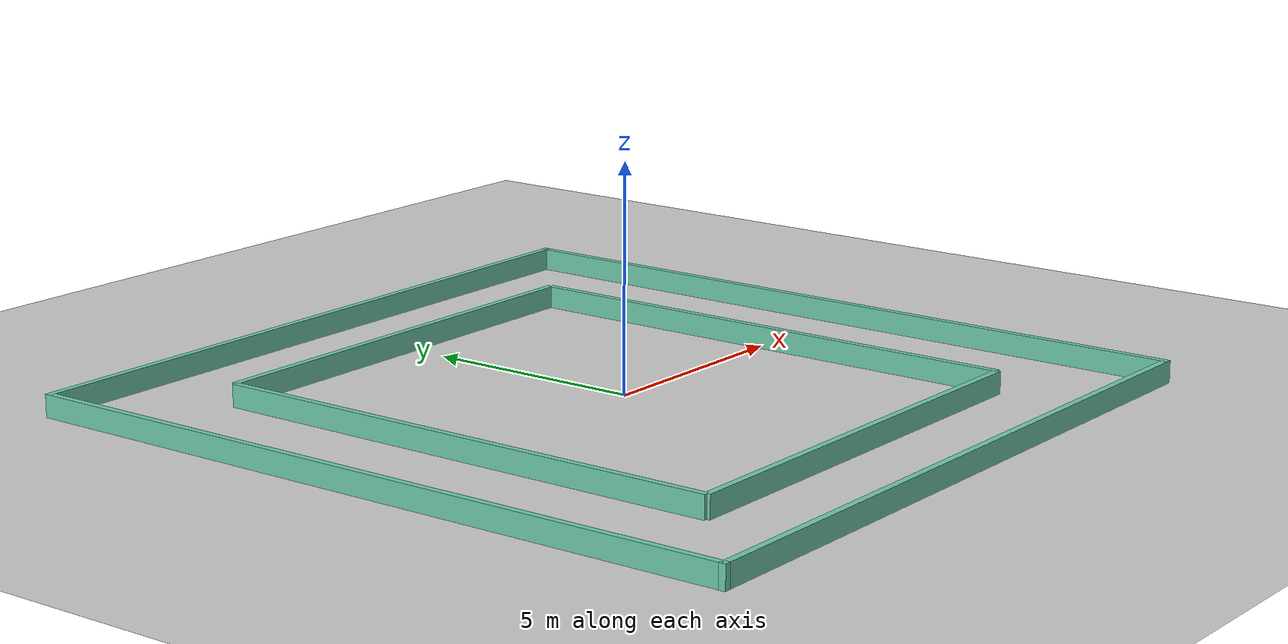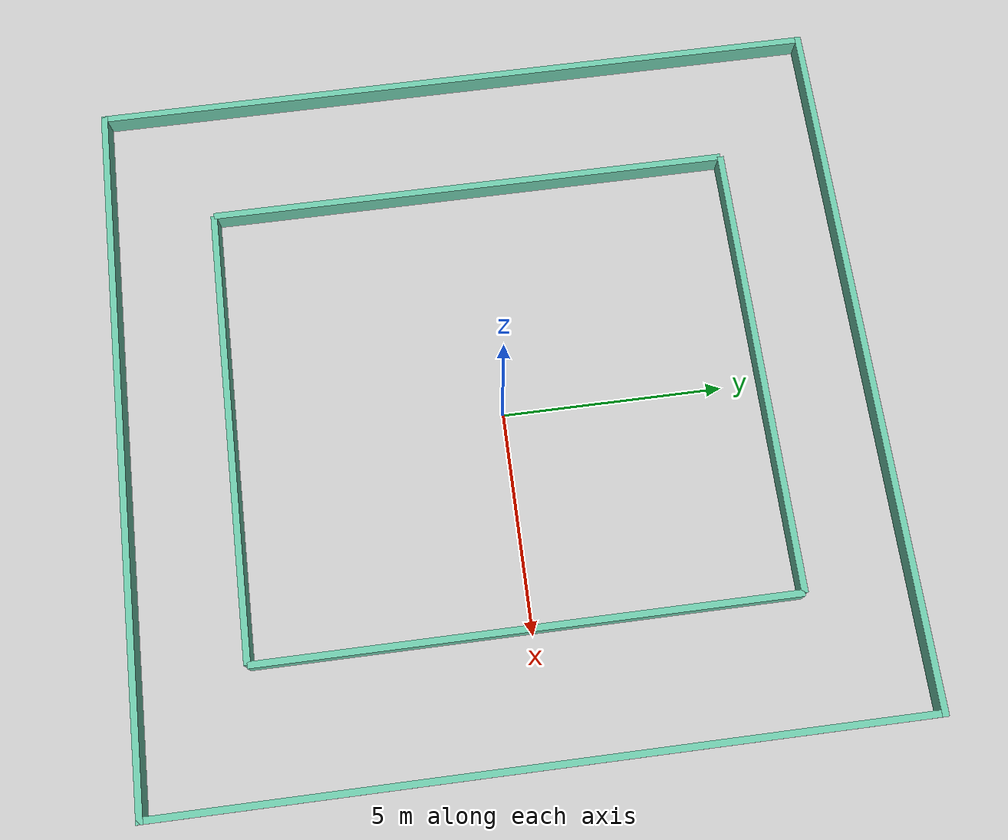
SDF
<sdf version="1.7">
 <world name="default">
  <light name="sun" type="directional">
   <pose>0 0 10 0 -0 0</pose>
   <diffuse>0.8 0.8 0.8 1</diffuse>
   <specular>0.2 0.2 0.2 1</specular>
   <attenuation>
    <range>1000</range>
    <constant>0.9</constant>
    <linear>0.01</linear>
    <quadratic>0.001</quadratic>
   </attenuation>
   <direction>-0.5 0.1 -0.9</direction>
   <spot><inner_angle>0</inner_angle><outer_angle>0</outer_angle><falloff>0</falloff></spot>
  </light>
  <model name="ground_plane">
   <static>1</static>
   <link name="link">
    <collision name="collision">
     <geometry><plane><normal>0 0 1</normal><size>100 100</size></plane></geometry>
     <surface><friction><ode><mu>100</mu><mu2>50</mu2></ode></friction></surface>
    </collision>
    <visual name="visual">
     <cast_shadows>0</cast_shadows>
     <geometry><plane><normal>0 0 1</normal><size>100 100</size></plane></geometry>
     <material>
      <script><uri>file://media/materials/scripts/gazebo.material</uri><name>Gazebo/Grey</name></script>
     </material>
    </visual>
   </link>
  </model>
  <model name="walls">
   <pose>-0.314414 -0.093904 -1 0 -0 0</pose>
   <link name="inner_wall_1">
    <collision name="inner_wall_1_Collision">
     <geometry><box><size>10.4 0.15 0.5</size></box></geometry>
     <pose>0 0 1.25 0 -0 0</pose>
    </collision>
    <visual name="inner_wall_1_Visual">
     <pose>0 0 1.25 0 -0 0</pose>
     <geometry><box><size>10.4 0.15 0.5</size></box></geometry>
     <material>
      <script><uri>file://media/materials/scripts/gazebo.material</uri><name>Gazebo/Grey</name></script>
      <ambient>0.435294 0.796078 0.67451 1</ambient>
     </material>
     <meta><layer>0</layer></meta>
    </visual>
    <pose>0.0 6.0 0 0 -0 0</pose>
   </link>
   <link name="inner_wall_2">
    <collision name="inner_wall_2_Collision">
     <geometry><box><size>12.0 0.15 0.5</size></box></geometry>
     <pose>0 0 1.25 0 -0 0</pose>
    </collision>
    <visual name="inner_wall_2_Visual">
     <pose>0 0 1.25 0 -0 0</pose>
     <geometry><box><size>12.0 0.15 0.5</size></box></geometry>
     <material>
      <script><uri>file://media/materials/scripts/gazebo.material</uri><name>Gazebo/Grey</name></script>
      <ambient>0.435294 0.796078 0.67451 1</ambient>
     </material>
     <meta><layer>0</layer></meta>
    </visual>
    <pose>5.2 0.0 0 0 -0 1.5708</pose>
   </link>
   <link name="inner_wall_3">
    <collision name="inner_wall_3_Collision">
     <geometry><box><size>10.4 0.15 0.5</size></box></geometry>
     <pose>0 0 1.25 0 -0 0</pose>
    </collision>
    <visual name="inner_wall_3_Visual">
     <pose>0 0 1.25 0 -0 0</pose>
     <geometry><box><size>10.4 0.15 0.5</size></box></geometry>
     <material>
      <script><uri>file://media/materials/scripts/gazebo.material</uri><name>Gazebo/Grey</name></script>
      <ambient>0.435294 0.796078 0.67451 1</ambient>
     </material>
     <meta><layer>0</layer></meta>
    </visual>
    <pose>0.0 -6.0 0 0 -0 0</pose>
   </link>
   <link name="inner_wall_4">
    <collision name="inner_wall_4_Collision">
     <geometry><box><size>12.0 0.15 0.5</size></box></geometry>
     <pose>0 0 1.25 0 -0 0</pose>
    </collision>
    <visual name="inner_wall_4_Visual">
     <pose>0 0 1.25 0 -0 0</pose>
     <geometry><box><size>12.0 0.15 0.5</size></box></geometry>
     <material>
      <script><uri>file://media/materials/scripts/gazebo.material</uri><name>Gazebo/Grey</name></script>
      <ambient>0.435294 0.796078 0.67451 1</ambient>
     </material>
     <meta><layer>0</layer></meta>
    </visual>
    <pose>-5.2 0.0 0 0 -0 1.5708</pose>
   </link>
   <link name="Wall_21">
    <collision name="Wall_21_Collision">
     <geometry><box><size>16.25 0.15 0.5</size></box></geometry>
     <pose>0 0 1.25 0 -0 0</pose>
    </collision>
    <visual name="Wall_21_Visual">
     <pose>0 0 1.25 0 -0 0</pose>
     <geometry><box><size>16.25 0.15 0.5</size></box></geometry>
     <material>
      <script><uri>file://media/materials/scripts/gazebo.material</uri><name>Gazebo/Grey</name></script>
      <ambient>0.435294 0.796078 0.67451 1</ambient>
     </material>
     <meta><layer>0</layer></meta>
    </visual>
    <pose>-0 8.425 0 0 -0 0</pose>
   </link>
   <link name="Wall_22">
    <collision name="Wall_22_Collision">
     <geometry><box><size>17 0.15 0.5</size></box></geometry>
     <pose>0 0 1.25 0 -0 0</pose>
    </collision>
    <visual name="Wall_22_Visual">
     <pose>0 0 1.25 0 -0 0</pose>
     <geometry><box><size>17 0.15 0.5</size></box></geometry>
     <material>
      <script><uri>file://media/materials/scripts/gazebo.material</uri><name>Gazebo/Grey</name></script>
      <ambient>0.435294 0.796078 0.67451 1</ambient>
     </material>
     <meta><layer>0</layer></meta>
    </visual>
    <pose>8.05 -0 0 0 -0 -1.5708</pose>
   </link>
   <link name="Wall_23">
    <collision name="Wall_23_Collision">
     <geometry><box><size>16.25 0.15 0.5</size></box></geometry>
     <pose>0 0 1.25 0 -0 0</pose>
    </collision>
    <visual name="Wall_23_Visual">
     <pose>0 0 1.25 0 -0 0</pose>
     <geometry><box><size>16.25 0.15 0.5</size></box></geometry>
     <material>
      <script><uri>file://media/materials/scripts/gazebo.material</uri><name>Gazebo/Grey</name></script>
      <ambient>0.435294 0.796078 0.67451 1</ambient>
     </material>
     <meta><layer>0</layer></meta>
    </visual>
    <pose>-0 -8.425 0 0 -0 3.14159</pose>
   </link>
   <link name="Wall_24">
    <collision name="Wall_24_Collision">
     <geometry><box><size>17 0.15 0.5</size></box></geometry>
     <pose>0 0 1.25 0 -0 0</pose>
    </collision>
    <visual name="Wall_24_Visual">
     <pose>0 0 1.25 0 -0 0</pose>
     <geometry><box><size>17 0.15 0.5</size></box></geometry>
     <material>
      <script><uri>file://media/materials/scripts/gazebo.material</uri><name>Gazebo/Grey</name></script>
      <ambient>0.435294 0.796078 0.67451 1</ambient>
     </material>
     <meta><layer>0</layer></meta>
    </visual>
    <pose>-8.05 -0 0 0 -0 1.5708</pose>
   </link>
   <static>1</static>
  </model>
  <gravity>0 0 -9.8</gravity>
  <magnetic_field>6e-06 2.3e-05 -4.2e-05</magnetic_field>
  <atmosphere type="adiabatic"/>
  <physics type="ode">
   <max_step_size>0.001</max_step_size>
   <real_time_factor>1</real_time_factor>
   <real_time_update_rate>1000</real_time_update_rate>
  </physics>
  <scene><ambient>0.4 0.4 0.4 1</ambient><background>0.7 0.7 0.7 1</background><shadows>1</shadows></scene>
 </world>
</sdf>
